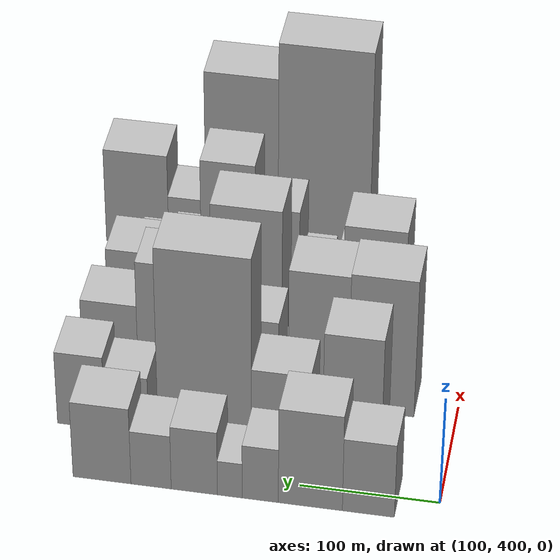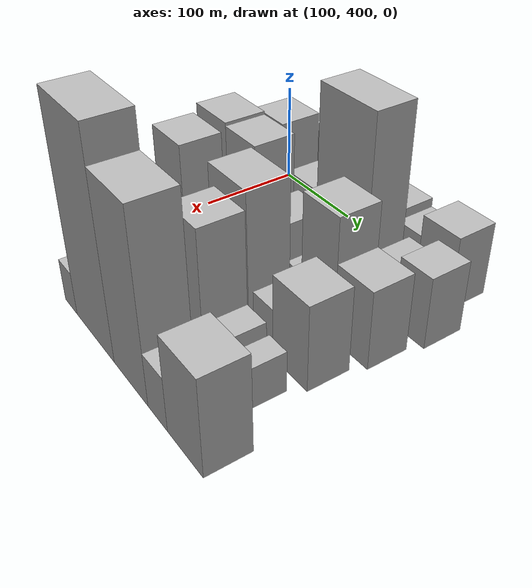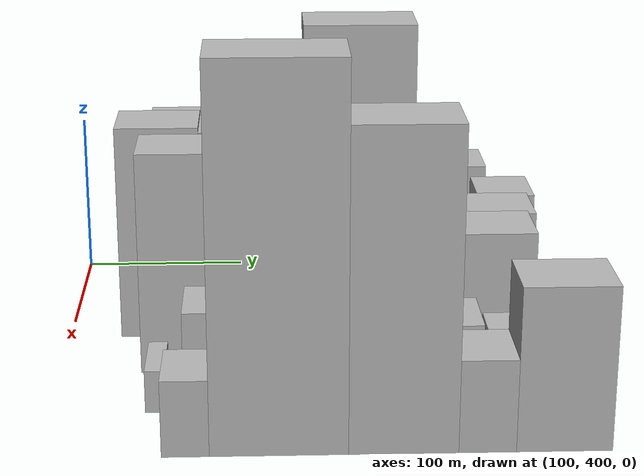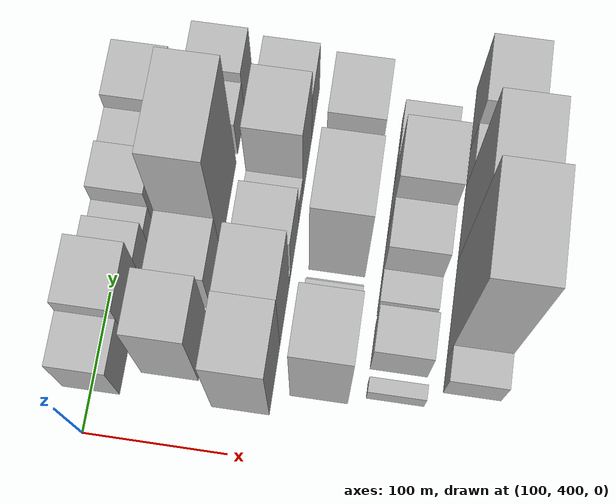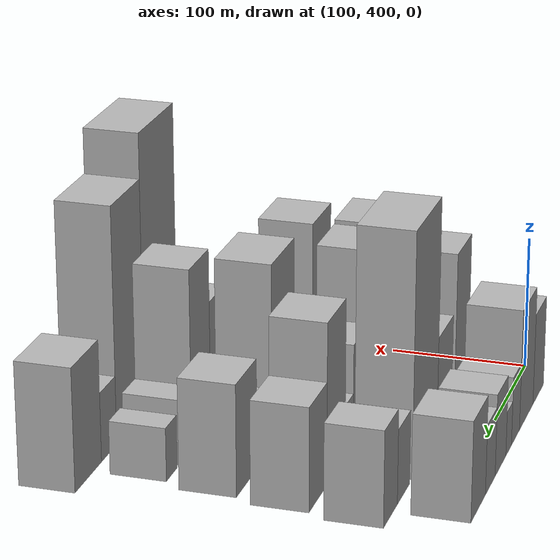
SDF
<sdf version="1.6">
 <world name="default">
  <model name="building_42">
   <static>1</static>
   <pose>100.0000 448.1428 0 0.000000 0.000000 0.000000</pose>
   <link name="link">
    <pose>0 0 34.50 0 0 0</pose>
    <collision name="collision"><geometry><box><size>40.0000 36.9061 69.0000</size></box></geometry></collision>
    <visual name="visual">
     <cast_shadows>0</cast_shadows>
     <geometry><box><size>40.0000 36.9061 69.0000</size></box></geometry>
     <material>
      <script>
       <uri>model://HANNAS_wall/materials/scripts</uri>
       <uri>model://HANNAS_wall/materials/textures</uri>
       <name>vrc/HANNAS_wall</name>
      </script>
     </material>
    </visual>
   </link>
  </model>
  <model name="building_43">
   <static>1</static>
   <pose>100.0000 489.4300 0 0.000000 0.000000 0.000000</pose>
   <link name="link">
    <pose>0 0 45.00 0 0 0</pose>
    <collision name="collision"><geometry><box><size>40.0000 45.6684 90.0000</size></box></geometry></collision>
    <visual name="visual">
     <cast_shadows>0</cast_shadows>
     <geometry><box><size>40.0000 45.6684 90.0000</size></box></geometry>
     <material>
      <script>
       <uri>model://HANNAS_wall/materials/scripts</uri>
       <uri>model://HANNAS_wall/materials/textures</uri>
       <name>vrc/HANNAS_wall</name>
      </script>
     </material>
    </visual>
   </link>
  </model>
  <model name="building_44">
   <static>1</static>
   <pose>100.0000 525.2028 0 0.000000 0.000000 0.000000</pose>
   <link name="link">
    <pose>0 0 25.50 0 0 0</pose>
    <collision name="collision"><geometry><box><size>40.0000 25.8772 51.0000</size></box></geometry></collision>
    <visual name="visual">
     <cast_shadows>0</cast_shadows>
     <geometry><box><size>40.0000 25.8772 51.0000</size></box></geometry>
     <material>
      <script>
       <uri>model://HANNAS_wall/materials/scripts</uri>
       <uri>model://HANNAS_wall/materials/textures</uri>
       <name>vrc/HANNAS_wall</name>
      </script>
     </material>
    </visual>
   </link>
  </model>
  <model name="building_45">
   <static>1</static>
   <pose>100.0000 547.0188 0 0.000000 0.000000 0.000000</pose>
   <link name="link">
    <pose>0 0 16.50 0 0 0</pose>
    <collision name="collision"><geometry><box><size>40.0000 17.7548 33.0000</size></box></geometry></collision>
    <visual name="visual">
     <cast_shadows>0</cast_shadows>
     <geometry><box><size>40.0000 17.7548 33.0000</size></box></geometry>
     <material>
      <script>
       <uri>model://HANNAS_wall/materials/scripts</uri>
       <uri>model://HANNAS_wall/materials/textures</uri>
       <name>vrc/HANNAS_wall</name>
      </script>
     </material>
    </visual>
   </link>
  </model>
  <model name="building_46">
   <static>1</static>
   <pose>100.0000 572.5653 0 0.000000 0.000000 0.000000</pose>
   <link name="link">
    <pose>0 0 30.00 0 0 0</pose>
    <collision name="collision"><geometry><box><size>40.0000 33.3383 60.0000</size></box></geometry></collision>
    <visual name="visual">
     <cast_shadows>0</cast_shadows>
     <geometry><box><size>40.0000 33.3383 60.0000</size></box></geometry>
     <material>
      <script>
       <uri>model://HANNAS_wall/materials/scripts</uri>
       <uri>model://HANNAS_wall/materials/textures</uri>
       <name>vrc/HANNAS_wall</name>
      </script>
     </material>
    </visual>
   </link>
  </model>
  <model name="building_47">
   <static>1</static>
   <pose>100.0000 603.7695 0 0.000000 0.000000 0.000000</pose>
   <link name="link">
    <pose>0 0 25.50 0 0 0</pose>
    <collision name="collision"><geometry><box><size>40.0000 29.0700 51.0000</size></box></geometry></collision>
    <visual name="visual">
     <cast_shadows>0</cast_shadows>
     <geometry><box><size>40.0000 29.0700 51.0000</size></box></geometry>
     <material>
      <script>
       <uri>model://HANNAS_wall/materials/scripts</uri>
       <uri>model://HANNAS_wall/materials/textures</uri>
       <name>vrc/HANNAS_wall</name>
      </script>
     </material>
    </visual>
   </link>
  </model>
  <model name="building_48">
   <static>1</static>
   <pose>100.0000 639.3489 0 0.000000 0.000000 0.000000</pose>
   <link name="link">
    <pose>0 0 36.00 0 0 0</pose>
    <collision name="collision"><geometry><box><size>40.0000 42.0888 72.0000</size></box></geometry></collision>
    <visual name="visual">
     <cast_shadows>0</cast_shadows>
     <geometry><box><size>40.0000 42.0888 72.0000</size></box></geometry>
     <material>
      <script>
       <uri>model://HANNAS_wall/materials/scripts</uri>
       <uri>model://HANNAS_wall/materials/textures</uri>
       <name>vrc/HANNAS_wall</name>
      </script>
     </material>
    </visual>
   </link>
  </model>
  <model name="building_90">
   <static>1</static>
   <pose>152.0000 468.1291 0 0.000000 0.000000 0.000000</pose>
   <link name="link">
    <pose>0 0 58.50 0 0 0</pose>
    <collision name="collision"><geometry><box><size>40.0000 42.4255 117.0000</size></box></geometry></collision>
    <visual name="visual">
     <cast_shadows>0</cast_shadows>
     <geometry><box><size>40.0000 42.4255 117.0000</size></box></geometry>
     <material>
      <script>
       <uri>model://HANNAS_wall/materials/scripts</uri>
       <uri>model://HANNAS_wall/materials/textures</uri>
       <name>vrc/HANNAS_wall</name>
      </script>
     </material>
    </visual>
   </link>
  </model>
  <model name="building_91">
   <static>1</static>
   <pose>152.0000 519.6107 0 0.000000 0.000000 0.000000</pose>
   <link name="link">
    <pose>0 0 37.50 0 0 0</pose>
    <collision name="collision"><geometry><box><size>40.0000 42.5377 75.0000</size></box></geometry></collision>
    <visual name="visual">
     <cast_shadows>0</cast_shadows>
     <geometry><box><size>40.0000 42.5377 75.0000</size></box></geometry>
     <material>
      <script>
       <uri>model://HANNAS_wall/materials/scripts</uri>
       <uri>model://HANNAS_wall/materials/textures</uri>
       <name>vrc/HANNAS_wall</name>
      </script>
     </material>
    </visual>
   </link>
  </model>
  <model name="building_92">
   <static>1</static>
   <pose>152.0000 575.1281 0 0.000000 0.000000 0.000000</pose>
   <link name="link">
    <pose>0 0 88.50 0 0 0</pose>
    <collision name="collision"><geometry><box><size>40.0000 68.4970 177.0000</size></box></geometry></collision>
    <visual name="visual">
     <cast_shadows>0</cast_shadows>
     <geometry><box><size>40.0000 68.4970 177.0000</size></box></geometry>
     <material>
      <script>
       <uri>model://HANNAS_wall/materials/scripts</uri>
       <uri>model://HANNAS_wall/materials/textures</uri>
       <name>vrc/HANNAS_wall</name>
      </script>
     </material>
    </visual>
   </link>
  </model>
  <model name="building_93">
   <static>1</static>
   <pose>152.0000 632.5283 0 0.000000 0.000000 0.000000</pose>
   <link name="link">
    <pose>0 0 27.00 0 0 0</pose>
    <collision name="collision"><geometry><box><size>40.0000 32.3034 54.0000</size></box></geometry></collision>
    <visual name="visual">
     <cast_shadows>0</cast_shadows>
     <geometry><box><size>40.0000 32.3034 54.0000</size></box></geometry>
     <material>
      <script>
       <uri>model://HANNAS_wall/materials/scripts</uri>
       <uri>model://HANNAS_wall/materials/textures</uri>
       <name>vrc/HANNAS_wall</name>
      </script>
     </material>
    </visual>
   </link>
  </model>
  <model name="building_94">
   <static>1</static>
   <pose>152.0000 666.2428 0 0.000000 0.000000 0.000000</pose>
   <link name="link">
    <pose>0 0 34.50 0 0 0</pose>
    <collision name="collision"><geometry><box><size>40.0000 35.1256 69.0000</size></box></geometry></collision>
    <visual name="visual">
     <cast_shadows>0</cast_shadows>
     <geometry><box><size>40.0000 35.1256 69.0000</size></box></geometry>
     <material>
      <script>
       <uri>model://HANNAS_wall/materials/scripts</uri>
       <uri>model://HANNAS_wall/materials/textures</uri>
       <name>vrc/HANNAS_wall</name>
      </script>
     </material>
    </visual>
   </link>
  </model>
  <model name="building_137">
   <static>1</static>
   <pose>204.0000 454.5413 0 0.000000 0.000000 0.000000</pose>
   <link name="link">
    <pose>0 0 64.50 0 0 0</pose>
    <collision name="collision"><geometry><box><size>40.0000 48.2107 129.0000</size></box></geometry></collision>
    <visual name="visual">
     <cast_shadows>0</cast_shadows>
     <geometry><box><size>40.0000 48.2107 129.0000</size></box></geometry>
     <material>
      <script>
       <uri>model://HANNAS_wall/materials/scripts</uri>
       <uri>model://HANNAS_wall/materials/textures</uri>
       <name>vrc/HANNAS_wall</name>
      </script>
     </material>
    </visual>
   </link>
  </model>
  <model name="building_138">
   <static>1</static>
   <pose>204.0000 500.9767 0 0.000000 0.000000 0.000000</pose>
   <link name="link">
    <pose>0 0 63.00 0 0 0</pose>
    <collision name="collision"><geometry><box><size>40.0000 44.6600 126.0000</size></box></geometry></collision>
    <visual name="visual">
     <cast_shadows>0</cast_shadows>
     <geometry><box><size>40.0000 44.6600 126.0000</size></box></geometry>
     <material>
      <script>
       <uri>model://HANNAS_wall/materials/scripts</uri>
       <uri>model://HANNAS_wall/materials/textures</uri>
       <name>vrc/HANNAS_wall</name>
      </script>
     </material>
    </visual>
   </link>
  </model>
  <model name="building_139">
   <static>1</static>
   <pose>204.0000 526.7940 0 0.000000 0.000000 0.000000</pose>
   <link name="link">
    <pose>0 0 7.50 0 0 0</pose>
    <collision name="collision"><geometry><box><size>40.0000 6.9747 15.0000</size></box></geometry></collision>
    <visual name="visual">
     <cast_shadows>0</cast_shadows>
     <geometry><box><size>40.0000 6.9747 15.0000</size></box></geometry>
     <material>
      <script>
       <uri>model://HANNAS_wall/materials/scripts</uri>
       <uri>model://HANNAS_wall/materials/textures</uri>
       <name>vrc/HANNAS_wall</name>
      </script>
     </material>
    </visual>
   </link>
  </model>
  <model name="building_140">
   <static>1</static>
   <pose>204.0000 549.9433 0 0.000000 0.000000 0.000000</pose>
   <link name="link">
    <pose>0 0 37.50 0 0 0</pose>
    <collision name="collision"><geometry><box><size>40.0000 39.3239 75.0000</size></box></geometry></collision>
    <visual name="visual">
     <cast_shadows>0</cast_shadows>
     <geometry><box><size>40.0000 39.3239 75.0000</size></box></geometry>
     <material>
      <script>
       <uri>model://HANNAS_wall/materials/scripts</uri>
       <uri>model://HANNAS_wall/materials/textures</uri>
       <name>vrc/HANNAS_wall</name>
      </script>
     </material>
    </visual>
   </link>
  </model>
  <model name="building_141">
   <static>1</static>
   <pose>204.0000 579.8510 0 0.000000 0.000000 0.000000</pose>
   <link name="link">
    <pose>0 0 19.50 0 0 0</pose>
    <collision name="collision"><geometry><box><size>40.0000 20.4914 39.0000</size></box></geometry></collision>
    <visual name="visual">
     <cast_shadows>0</cast_shadows>
     <geometry><box><size>40.0000 20.4914 39.0000</size></box></geometry>
     <material>
      <script>
       <uri>model://HANNAS_wall/materials/scripts</uri>
       <uri>model://HANNAS_wall/materials/textures</uri>
       <name>vrc/HANNAS_wall</name>
      </script>
     </material>
    </visual>
   </link>
  </model>
  <model name="building_142">
   <static>1</static>
   <pose>204.0000 612.4443 0 0.000000 0.000000 0.000000</pose>
   <link name="link">
    <pose>0 0 58.50 0 0 0</pose>
    <collision name="collision"><geometry><box><size>40.0000 44.6953 117.0000</size></box></geometry></collision>
    <visual name="visual">
     <cast_shadows>0</cast_shadows>
     <geometry><box><size>40.0000 44.6953 117.0000</size></box></geometry>
     <material>
      <script>
       <uri>model://HANNAS_wall/materials/scripts</uri>
       <uri>model://HANNAS_wall/materials/textures</uri>
       <name>vrc/HANNAS_wall</name>
      </script>
     </material>
    </visual>
   </link>
  </model>
  <model name="building_143">
   <static>1</static>
   <pose>204.0000 655.6068 0 0.000000 0.000000 0.000000</pose>
   <link name="link">
    <pose>0 0 37.50 0 0 0</pose>
    <collision name="collision"><geometry><box><size>40.0000 41.6296 75.0000</size></box></geometry></collision>
    <visual name="visual">
     <cast_shadows>0</cast_shadows>
     <geometry><box><size>40.0000 41.6296 75.0000</size></box></geometry>
     <material>
      <script>
       <uri>model://HANNAS_wall/materials/scripts</uri>
       <uri>model://HANNAS_wall/materials/textures</uri>
       <name>vrc/HANNAS_wall</name>
      </script>
     </material>
    </visual>
   </link>
  </model>
  <model name="building_188">
   <static>1</static>
   <pose>256.0000 468.6900 0 0.000000 0.000000 0.000000</pose>
   <link name="link">
    <pose>0 0 64.50 0 0 0</pose>
    <collision name="collision"><geometry><box><size>40.0000 45.9019 129.0000</size></box></geometry></collision>
    <visual name="visual">
     <cast_shadows>0</cast_shadows>
     <geometry><box><size>40.0000 45.9019 129.0000</size></box></geometry>
     <material>
      <script>
       <uri>model://HANNAS_wall/materials/scripts</uri>
       <uri>model://HANNAS_wall/materials/textures</uri>
       <name>vrc/HANNAS_wall</name>
      </script>
     </material>
    </visual>
   </link>
  </model>
  <model name="building_189">
   <static>1</static>
   <pose>256.0000 509.9498 0 0.000000 0.000000 0.000000</pose>
   <link name="link">
    <pose>0 0 18.00 0 0 0</pose>
    <collision name="collision"><geometry><box><size>40.0000 20.6177 36.0000</size></box></geometry></collision>
    <visual name="visual">
     <cast_shadows>0</cast_shadows>
     <geometry><box><size>40.0000 20.6177 36.0000</size></box></geometry>
     <material>
      <script>
       <uri>model://HANNAS_wall/materials/scripts</uri>
       <uri>model://HANNAS_wall/materials/textures</uri>
       <name>vrc/HANNAS_wall</name>
      </script>
     </material>
    </visual>
   </link>
  </model>
  <model name="building_190">
   <static>1</static>
   <pose>256.0000 523.6089 0 0.000000 0.000000 0.000000</pose>
   <link name="link">
    <pose>0 0 7.50 0 0 0</pose>
    <collision name="collision"><geometry><box><size>40.0000 6.7005 15.0000</size></box></geometry></collision>
    <visual name="visual">
     <cast_shadows>0</cast_shadows>
     <geometry><box><size>40.0000 6.7005 15.0000</size></box></geometry>
     <material>
      <script>
       <uri>model://HANNAS_wall/materials/scripts</uri>
       <uri>model://HANNAS_wall/materials/textures</uri>
       <name>vrc/HANNAS_wall</name>
      </script>
     </material>
    </visual>
   </link>
  </model>
  <model name="building_191">
   <static>1</static>
   <pose>256.0000 563.5761 0 0.000000 0.000000 0.000000</pose>
   <link name="link">
    <pose>0 0 67.50 0 0 0</pose>
    <collision name="collision"><geometry><box><size>40.0000 53.2340 135.0000</size></box></geometry></collision>
    <visual name="visual">
     <cast_shadows>0</cast_shadows>
     <geometry><box><size>40.0000 53.2340 135.0000</size></box></geometry>
     <material>
      <script>
       <uri>model://HANNAS_wall/materials/scripts</uri>
       <uri>model://HANNAS_wall/materials/textures</uri>
       <name>vrc/HANNAS_wall</name>
      </script>
     </material>
    </visual>
   </link>
  </model>
  <model name="building_192">
   <static>1</static>
   <pose>256.0000 610.5573 0 0.000000 0.000000 0.000000</pose>
   <link name="link">
    <pose>0 0 24.00 0 0 0</pose>
    <collision name="collision"><geometry><box><size>40.0000 26.7284 48.0000</size></box></geometry></collision>
    <visual name="visual">
     <cast_shadows>0</cast_shadows>
     <geometry><box><size>40.0000 26.7284 48.0000</size></box></geometry>
     <material>
      <script>
       <uri>model://HANNAS_wall/materials/scripts</uri>
       <uri>model://HANNAS_wall/materials/textures</uri>
       <name>vrc/HANNAS_wall</name>
      </script>
     </material>
    </visual>
   </link>
  </model>
  <model name="building_193">
   <static>1</static>
   <pose>256.0000 646.3887 0 0.000000 0.000000 0.000000</pose>
   <link name="link">
    <pose>0 0 40.50 0 0 0</pose>
    <collision name="collision"><geometry><box><size>40.0000 44.9344 81.0000</size></box></geometry></collision>
    <visual name="visual">
     <cast_shadows>0</cast_shadows>
     <geometry><box><size>40.0000 44.9344 81.0000</size></box></geometry>
     <material>
      <script>
       <uri>model://HANNAS_wall/materials/scripts</uri>
       <uri>model://HANNAS_wall/materials/textures</uri>
       <name>vrc/HANNAS_wall</name>
      </script>
     </material>
    </visual>
   </link>
  </model>
  <model name="building_239">
   <static>1</static>
   <pose>308.0000 456.6762 0 0.000000 0.000000 0.000000</pose>
   <link name="link">
    <pose>0 0 12.00 0 0 0</pose>
    <collision name="collision"><geometry><box><size>40.0000 10.6152 24.0000</size></box></geometry></collision>
    <visual name="visual">
     <cast_shadows>0</cast_shadows>
     <geometry><box><size>40.0000 10.6152 24.0000</size></box></geometry>
     <material>
      <script>
       <uri>model://HANNAS_wall/materials/scripts</uri>
       <uri>model://HANNAS_wall/materials/textures</uri>
       <name>vrc/HANNAS_wall</name>
      </script>
     </material>
    </visual>
   </link>
  </model>
  <model name="building_240">
   <static>1</static>
   <pose>308.0000 488.0131 0 0.000000 0.000000 0.000000</pose>
   <link name="link">
    <pose>0 0 28.50 0 0 0</pose>
    <collision name="collision"><geometry><box><size>40.0000 32.0588 57.0000</size></box></geometry></collision>
    <visual name="visual">
     <cast_shadows>0</cast_shadows>
     <geometry><box><size>40.0000 32.0588 57.0000</size></box></geometry>
     <material>
      <script>
       <uri>model://HANNAS_wall/materials/scripts</uri>
       <uri>model://HANNAS_wall/materials/textures</uri>
       <name>vrc/HANNAS_wall</name>
      </script>
     </material>
    </visual>
   </link>
  </model>
  <model name="building_241">
   <static>1</static>
   <pose>308.0000 521.3915 0 0.000000 0.000000 0.000000</pose>
   <link name="link">
    <pose>0 0 21.00 0 0 0</pose>
    <collision name="collision"><geometry><box><size>40.0000 22.6979 42.0000</size></box></geometry></collision>
    <visual name="visual">
     <cast_shadows>0</cast_shadows>
     <geometry><box><size>40.0000 22.6979 42.0000</size></box></geometry>
     <material>
      <script>
       <uri>model://HANNAS_wall/materials/scripts</uri>
       <uri>model://HANNAS_wall/materials/textures</uri>
       <name>vrc/HANNAS_wall</name>
      </script>
     </material>
    </visual>
   </link>
  </model>
  <model name="building_242">
   <static>1</static>
   <pose>308.0000 549.5971 0 0.000000 0.000000 0.000000</pose>
   <link name="link">
    <pose>0 0 46.50 0 0 0</pose>
    <collision name="collision"><geometry><box><size>40.0000 33.7133 93.0000</size></box></geometry></collision>
    <visual name="visual">
     <cast_shadows>0</cast_shadows>
     <geometry><box><size>40.0000 33.7133 93.0000</size></box></geometry>
     <material>
      <script>
       <uri>model://HANNAS_wall/materials/scripts</uri>
       <uri>model://HANNAS_wall/materials/textures</uri>
       <name>vrc/HANNAS_wall</name>
      </script>
     </material>
    </visual>
   </link>
  </model>
  <model name="building_243">
   <static>1</static>
   <pose>308.0000 587.0643 0 0.000000 0.000000 0.000000</pose>
   <link name="link">
    <pose>0 0 66.00 0 0 0</pose>
    <collision name="collision"><geometry><box><size>40.0000 41.2210 132.0000</size></box></geometry></collision>
    <visual name="visual">
     <cast_shadows>0</cast_shadows>
     <geometry><box><size>40.0000 41.2210 132.0000</size></box></geometry>
     <material>
      <script>
       <uri>model://HANNAS_wall/materials/scripts</uri>
       <uri>model://HANNAS_wall/materials/textures</uri>
       <name>vrc/HANNAS_wall</name>
      </script>
     </material>
    </visual>
   </link>
  </model>
  <model name="building_244">
   <static>1</static>
   <pose>308.0000 620.4458 0 0.000000 0.000000 0.000000</pose>
   <link name="link">
    <pose>0 0 24.00 0 0 0</pose>
    <collision name="collision"><geometry><box><size>40.0000 25.5420 48.0000</size></box></geometry></collision>
    <visual name="visual">
     <cast_shadows>0</cast_shadows>
     <geometry><box><size>40.0000 25.5420 48.0000</size></box></geometry>
     <material>
      <script>
       <uri>model://HANNAS_wall/materials/scripts</uri>
       <uri>model://HANNAS_wall/materials/textures</uri>
       <name>vrc/HANNAS_wall</name>
      </script>
     </material>
    </visual>
   </link>
  </model>
  <model name="building_245">
   <static>1</static>
   <pose>308.0000 648.3953 0 0.000000 0.000000 0.000000</pose>
   <link name="link">
    <pose>0 0 19.50 0 0 0</pose>
    <collision name="collision"><geometry><box><size>40.0000 22.3569 39.0000</size></box></geometry></collision>
    <visual name="visual">
     <cast_shadows>0</cast_shadows>
     <geometry><box><size>40.0000 22.3569 39.0000</size></box></geometry>
     <material>
      <script>
       <uri>model://HANNAS_wall/materials/scripts</uri>
       <uri>model://HANNAS_wall/materials/textures</uri>
       <name>vrc/HANNAS_wall</name>
      </script>
     </material>
    </visual>
   </link>
  </model>
  <model name="building_290">
   <static>1</static>
   <pose>360.0000 474.9962 0 0.000000 0.000000 0.000000</pose>
   <link name="link">
    <pose>0 0 21.00 0 0 0</pose>
    <collision name="collision"><geometry><box><size>40.0000 24.3434 42.0000</size></box></geometry></collision>
    <visual name="visual">
     <cast_shadows>0</cast_shadows>
     <geometry><box><size>40.0000 24.3434 42.0000</size></box></geometry>
     <material>
      <script>
       <uri>model://HANNAS_wall/materials/scripts</uri>
       <uri>model://HANNAS_wall/materials/textures</uri>
       <name>vrc/HANNAS_wall</name>
      </script>
     </material>
    </visual>
   </link>
  </model>
  <model name="building_291">
   <static>1</static>
   <pose>360.0000 522.5993 0 0.000000 0.000000 0.000000</pose>
   <link name="link">
    <pose>0 0 103.50 0 0 0</pose>
    <collision name="collision"><geometry><box><size>40.0000 70.8627 207.0000</size></box></geometry></collision>
    <visual name="visual">
     <cast_shadows>0</cast_shadows>
     <geometry><box><size>40.0000 70.8627 207.0000</size></box></geometry>
     <material>
      <script>
       <uri>model://HANNAS_wall/materials/scripts</uri>
       <uri>model://HANNAS_wall/materials/textures</uri>
       <name>vrc/HANNAS_wall</name>
      </script>
     </material>
    </visual>
   </link>
  </model>
  <model name="building_292">
   <static>1</static>
   <pose>360.0000 586.1545 0 0.000000 0.000000 0.000000</pose>
   <link name="link">
    <pose>0 0 87.00 0 0 0</pose>
    <collision name="collision"><geometry><box><size>40.0000 56.2477 174.0000</size></box></geometry></collision>
    <visual name="visual">
     <cast_shadows>0</cast_shadows>
     <geometry><box><size>40.0000 56.2477 174.0000</size></box></geometry>
     <material>
      <script>
       <uri>model://HANNAS_wall/materials/scripts</uri>
       <uri>model://HANNAS_wall/materials/textures</uri>
       <name>vrc/HANNAS_wall</name>
      </script>
     </material>
    </visual>
   </link>
  </model>
  <model name="building_293">
   <static>1</static>
   <pose>360.0000 629.0600 0 0.000000 0.000000 0.000000</pose>
   <link name="link">
    <pose>0 0 25.50 0 0 0</pose>
    <collision name="collision"><geometry><box><size>40.0000 29.5633 51.0000</size></box></geometry></collision>
    <visual name="visual">
     <cast_shadows>0</cast_shadows>
     <geometry><box><size>40.0000 29.5633 51.0000</size></box></geometry>
     <material>
      <script>
       <uri>model://HANNAS_wall/materials/scripts</uri>
       <uri>model://HANNAS_wall/materials/textures</uri>
       <name>vrc/HANNAS_wall</name>
      </script>
     </material>
    </visual>
   </link>
  </model>
  <model name="building_294">
   <static>1</static>
   <pose>360.0000 668.5612 0 0.000000 0.000000 0.000000</pose>
   <link name="link">
    <pose>0 0 45.00 0 0 0</pose>
    <collision name="collision"><geometry><box><size>40.0000 49.4392 90.0000</size></box></geometry></collision>
    <visual name="visual">
     <cast_shadows>0</cast_shadows>
     <geometry><box><size>40.0000 49.4392 90.0000</size></box></geometry>
     <material>
      <script>
       <uri>model://HANNAS_wall/materials/scripts</uri>
       <uri>model://HANNAS_wall/materials/textures</uri>
       <name>vrc/HANNAS_wall</name>
      </script>
     </material>
    </visual>
   </link>
  </model>
 </world>
</sdf>
